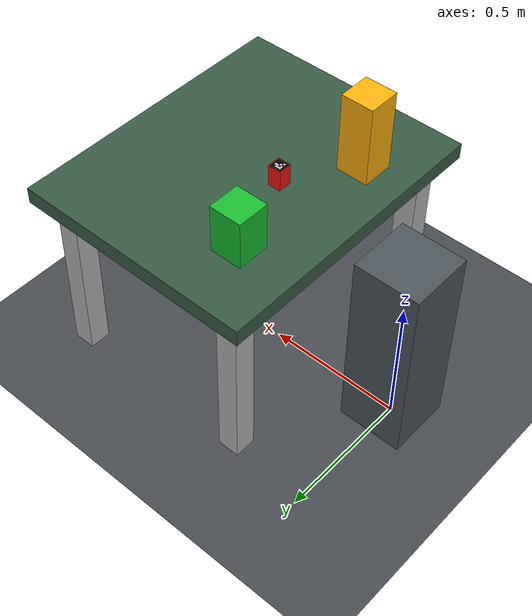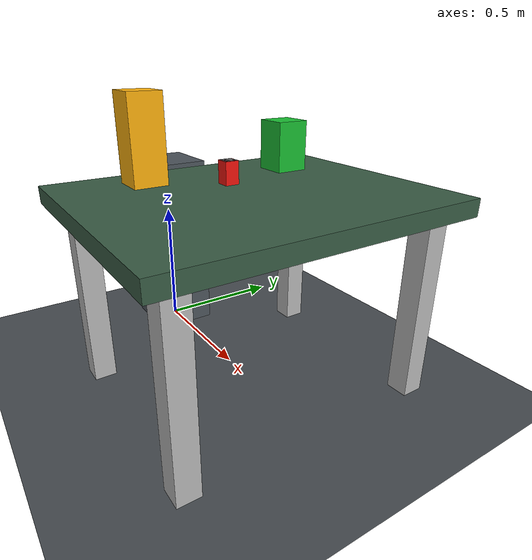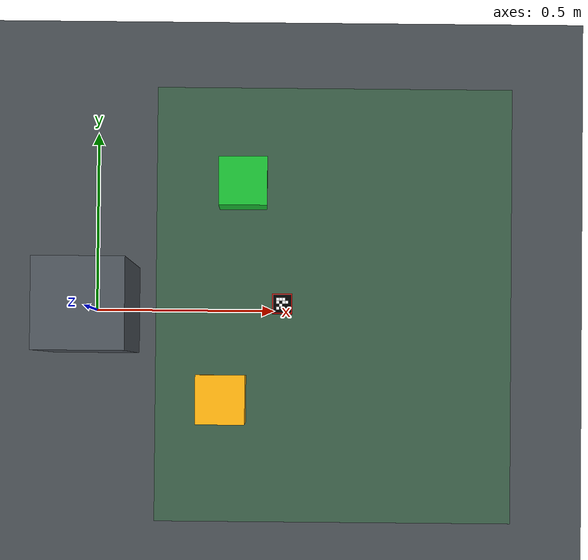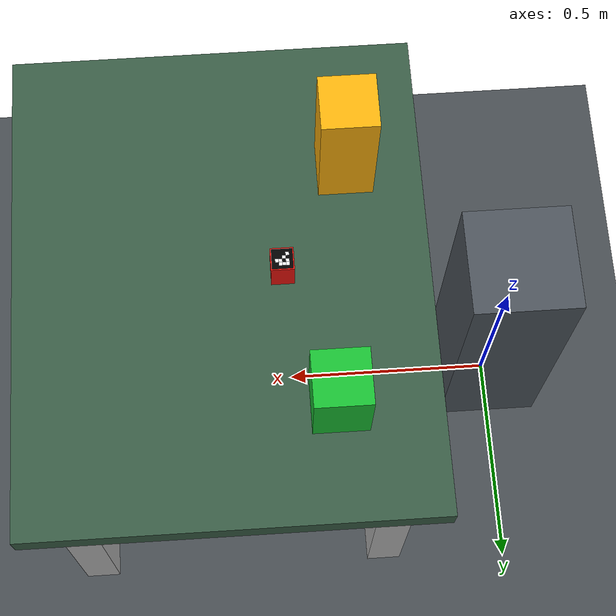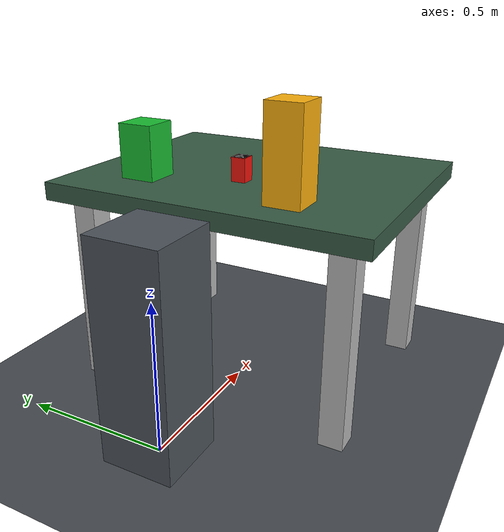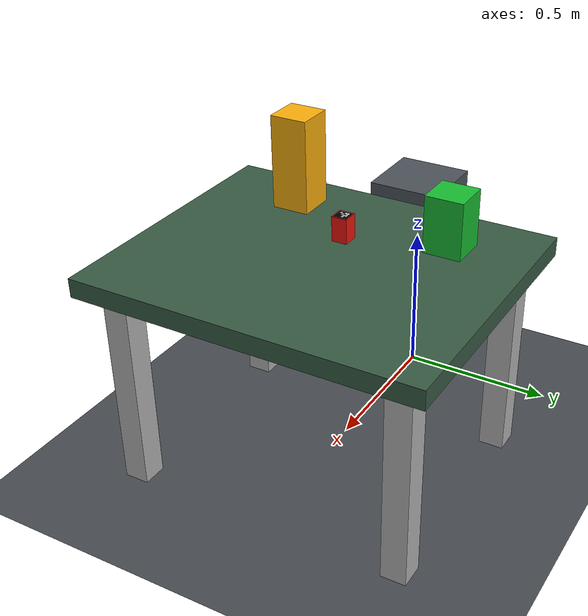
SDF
<?xml version="1.0"?>
<sdf version="1.9">
  <world name="panda_table">
    <physics name="default_physics" type="ignored">
      <max_step_size>0.001</max_step_size>
      <real_time_factor>1.0</real_time_factor>
    </physics>

    <plugin filename="gz-sim-physics-system" name="gz::sim::systems::Physics"/>
    <plugin filename="gz-sim-contact-system" name="gz::sim::systems::Contact"/>
    <plugin filename="gz-sim-apply-link-wrench-system"
            name="gz::sim::systems::ApplyLinkWrench"/>
    <plugin filename="gz-sim-user-commands-system" name="gz::sim::systems::UserCommands"/>
    <plugin filename="gz-sim-scene-broadcaster-system" name="gz::sim::systems::SceneBroadcaster"/>
    <plugin filename="gz-sim-sensors-system"
            name="gz::sim::systems::Sensors">
      <render_engine>ogre2</render_engine>
    </plugin>

    <gravity>0 0 -9.81</gravity>
    <scene>
      <ambient>0.6 0.6 0.6 1</ambient>
      <background>0.12 0.14 0.16 1</background>
      <shadows>true</shadows>
    </scene>

    <light name="sun" type="directional">
      <cast_shadows>true</cast_shadows>
      <pose>0 0 8 0 0 0</pose>
      <diffuse>0.9 0.9 0.9 1</diffuse>
      <specular>0.2 0.2 0.2 1</specular>
      <direction>-0.4 0.2 -1</direction>
    </light>

    <model name="overhead_camera">
      <static>true</static>
      <pose>0.65 0 1.65 0 1.57079632679 0</pose>
      <link name="camera_link">
        <sensor name="rgb_camera" type="camera">
          <always_on>true</always_on>
          <update_rate>15</update_rate>
          <visualize>true</visualize>
          <topic>/camera/image_raw</topic>
          <gz_frame_id>overhead_camera_optical_frame</gz_frame_id>
          <camera>
            <camera_info_topic>/camera/camera_info</camera_info_topic>
            <horizontal_fov>0.65</horizontal_fov>
            <image>
              <width>640</width>
              <height>480</height>
              <format>R8G8B8</format>
            </image>
            <clip>
              <near>0.05</near>
              <far>3.0</far>
            </clip>
          </camera>
        </sensor>
        <sensor name="depth_camera" type="rgbd_camera">
          <always_on>true</always_on>
          <update_rate>10</update_rate>
          <visualize>false</visualize>
          <topic>/depth_camera</topic>
          <gz_frame_id>overhead_depth_camera_frame</gz_frame_id>
          <camera>
            <horizontal_fov>1.2</horizontal_fov>
            <image>
              <width>160</width>
              <height>120</height>
              <format>R8G8B8</format>
            </image>
            <clip>
              <near>0.05</near>
              <far>3.0</far>
            </clip>
            <depth_camera>
              <clip>
                <near>0.05</near>
                <far>3.0</far>
              </clip>
            </depth_camera>
          </camera>
        </sensor>
      </link>
    </model>

    <!-- Inactive unless explicitly bridged by the portfolio video script. -->
    <model name="showcase_camera">
      <static>true</static>
      <pose>1.80 1.25 1.25 0 0.22 -2.40</pose>
      <link name="showcase_camera_link">
        <sensor name="showcase_rgb_camera" type="camera">
          <always_on>false</always_on>
          <update_rate>15</update_rate>
          <visualize>false</visualize>
          <topic>/showcase_camera/image_raw</topic>
          <gz_frame_id>showcase_camera_optical_frame</gz_frame_id>
          <camera>
            <horizontal_fov>1.10</horizontal_fov>
            <image>
              <width>640</width>
              <height>360</height>
              <format>R8G8B8</format>
            </image>
            <clip>
              <near>0.10</near>
              <far>5.0</far>
            </clip>
          </camera>
        </sensor>
      </link>
    </model>

    <model name="ground_plane">
      <static>true</static>
      <link name="link">
        <collision name="collision">
          <geometry><plane><normal>0 0 1</normal><size>20 20</size></plane></geometry>
        </collision>
        <visual name="visual">
          <geometry><plane><normal>0 0 1</normal><size>20 20</size></plane></geometry>
          <material><ambient>0.22 0.24 0.26 1</ambient><diffuse>0.28 0.30 0.32 1</diffuse></material>
        </visual>
      </link>
    </model>

    <model name="robot_pedestal">
      <static>true</static>
      <pose>0 0 0.36 0 0 0</pose>
      <link name="pedestal_link">
        <collision name="collision">
          <geometry><box><size>0.24 0.24 0.72</size></box></geometry>
        </collision>
        <visual name="visual">
          <geometry><box><size>0.24 0.24 0.72</size></box></geometry>
          <material><ambient>0.20 0.22 0.24 1</ambient><diffuse>0.30 0.33 0.36 1</diffuse></material>
        </visual>
      </link>
    </model>

    <model name="work_table">
      <static>true</static>
      <link name="table_top">
        <pose>0.65 0 0.69 0 0 0</pose>
        <collision name="collision">
          <geometry><box><size>0.9 1.1 0.06</size></box></geometry>
        </collision>
        <visual name="visual">
          <geometry><box><size>0.9 1.1 0.06</size></box></geometry>
          <material><ambient>0.18 0.25 0.20 1</ambient><diffuse>0.22 0.36 0.27 1</diffuse></material>
        </visual>
      </link>
      <link name="front_left_leg">
        <pose>0.30 0.45 0.33 0 0 0</pose>
        <collision name="collision"><geometry><box><size>0.08 0.08 0.66</size></box></geometry></collision>
        <visual name="visual"><geometry><box><size>0.08 0.08 0.66</size></box></geometry></visual>
      </link>
      <link name="front_right_leg">
        <pose>0.30 -0.45 0.33 0 0 0</pose>
        <collision name="collision"><geometry><box><size>0.08 0.08 0.66</size></box></geometry></collision>
        <visual name="visual"><geometry><box><size>0.08 0.08 0.66</size></box></geometry></visual>
      </link>
      <link name="rear_left_leg">
        <pose>1.00 0.45 0.33 0 0 0</pose>
        <collision name="collision"><geometry><box><size>0.08 0.08 0.66</size></box></geometry></collision>
        <visual name="visual"><geometry><box><size>0.08 0.08 0.66</size></box></geometry></visual>
      </link>
      <link name="rear_right_leg">
        <pose>1.00 -0.45 0.33 0 0 0</pose>
        <collision name="collision"><geometry><box><size>0.08 0.08 0.66</size></box></geometry></collision>
        <visual name="visual"><geometry><box><size>0.08 0.08 0.66</size></box></geometry></visual>
      </link>
    </model>

    <model name="target_cube">
      <pose>0.52 0 0.76 0 0 0</pose>
      <plugin filename="gz-sim-pose-publisher-system"
              name="gz::sim::systems::PosePublisher">
        <publish_link_pose>false</publish_link_pose>
        <publish_model_pose>true</publish_model_pose>
        <publish_nested_model_pose>false</publish_nested_model_pose>
        <use_pose_vector_msg>false</use_pose_vector_msg>
        <static_publisher>false</static_publisher>
        <update_frequency>30</update_frequency>
      </plugin>
      <link name="target_link">
        <inertial>
          <mass>0.10</mass>
          <inertia><ixx>0.00005</ixx><iyy>0.00005</iyy><izz>0.00004</izz></inertia>
        </inertial>
        <collision name="collision">
          <geometry><box><size>0.05 0.05 0.08</size></box></geometry>
          <surface><friction><ode><mu>2.0</mu><mu2>2.0</mu2></ode></friction></surface>
        </collision>
        <sensor name="target_cube_contact" type="contact">
          <always_on>true</always_on>
          <update_rate>100</update_rate>
          <topic>/gazebo/target_cube/contacts</topic>
          <contact><collision>collision</collision></contact>
        </sensor>
        <visual name="visual">
          <geometry><box><size>0.05 0.05 0.08</size></box></geometry>
          <material><ambient>0.8 0.04 0.03 1</ambient><diffuse>0.95 0.08 0.05 1</diffuse></material>
        </visual>
        <!-- DICT_4X4_50 marker 0. The black plate provides the one-bit border;
             white cells encode bytes {181, 50} in row-major order. -->
        <visual name="aruco_black_plate">
          <pose>0 0 0.0403 0 0 0</pose>
          <cast_shadows>false</cast_shadows>
          <geometry><box><size>0.045 0.045 0.0005</size></box></geometry>
          <material><ambient>0 0 0 1</ambient><diffuse>0 0 0 1</diffuse></material>
        </visual>
        <visual name="aruco_white_r0_c0">
          <pose>-0.01125 -0.01125 0.0406 0 0 0</pose>
          <cast_shadows>false</cast_shadows>
          <geometry><box><size>0.0075 0.0075 0.0004</size></box></geometry>
          <material><ambient>1 1 1 1</ambient><diffuse>1 1 1 1</diffuse></material>
        </visual>
        <visual name="aruco_white_r0_c2">
          <pose>-0.01125 0.00375 0.0406 0 0 0</pose>
          <cast_shadows>false</cast_shadows>
          <geometry><box><size>0.0075 0.0075 0.0004</size></box></geometry>
          <material><ambient>1 1 1 1</ambient><diffuse>1 1 1 1</diffuse></material>
        </visual>
        <visual name="aruco_white_r0_c3">
          <pose>-0.01125 0.01125 0.0406 0 0 0</pose>
          <cast_shadows>false</cast_shadows>
          <geometry><box><size>0.0075 0.0075 0.0004</size></box></geometry>
          <material><ambient>1 1 1 1</ambient><diffuse>1 1 1 1</diffuse></material>
        </visual>
        <visual name="aruco_white_r1_c1">
          <pose>-0.00375 -0.00375 0.0406 0 0 0</pose>
          <cast_shadows>false</cast_shadows>
          <geometry><box><size>0.0075 0.0075 0.0004</size></box></geometry>
          <material><ambient>1 1 1 1</ambient><diffuse>1 1 1 1</diffuse></material>
        </visual>
        <visual name="aruco_white_r1_c3">
          <pose>-0.00375 0.01125 0.0406 0 0 0</pose>
          <cast_shadows>false</cast_shadows>
          <geometry><box><size>0.0075 0.0075 0.0004</size></box></geometry>
          <material><ambient>1 1 1 1</ambient><diffuse>1 1 1 1</diffuse></material>
        </visual>
        <visual name="aruco_white_r2_c2">
          <pose>0.00375 0.00375 0.0406 0 0 0</pose>
          <cast_shadows>false</cast_shadows>
          <geometry><box><size>0.0075 0.0075 0.0004</size></box></geometry>
          <material><ambient>1 1 1 1</ambient><diffuse>1 1 1 1</diffuse></material>
        </visual>
        <visual name="aruco_white_r2_c3">
          <pose>0.00375 0.01125 0.0406 0 0 0</pose>
          <cast_shadows>false</cast_shadows>
          <geometry><box><size>0.0075 0.0075 0.0004</size></box></geometry>
          <material><ambient>1 1 1 1</ambient><diffuse>1 1 1 1</diffuse></material>
        </visual>
        <visual name="aruco_white_r3_c2">
          <pose>0.01125 0.00375 0.0406 0 0 0</pose>
          <cast_shadows>false</cast_shadows>
          <geometry><box><size>0.0075 0.0075 0.0004</size></box></geometry>
          <material><ambient>1 1 1 1</ambient><diffuse>1 1 1 1</diffuse></material>
        </visual>
      </link>
    </model>

    <model name="obstacle_block">
      <static>true</static>
      <pose>0.42 0.30 0.81 0 0 0</pose>
      <link name="obstacle_link">
        <collision name="collision"><geometry><box><size>0.12 0.12 0.18</size></box></geometry></collision>
        <visual name="visual">
          <geometry><box><size>0.12 0.12 0.18</size></box></geometry>
          <material><ambient>0.08 0.55 0.16 1</ambient><diffuse>0.10 0.75 0.20 1</diffuse></material>
        </visual>
      </link>
    </model>

    <model name="dynamic_obstacle">
      <static>true</static>
      <pose>0.37 -0.24 0.87 0 0 0</pose>
      <plugin filename="gz-sim-pose-publisher-system"
              name="gz::sim::systems::PosePublisher">
        <publish_link_pose>false</publish_link_pose>
        <publish_model_pose>true</publish_model_pose>
        <publish_nested_model_pose>false</publish_nested_model_pose>
        <use_pose_vector_msg>false</use_pose_vector_msg>
        <static_publisher>false</static_publisher>
        <update_frequency>20</update_frequency>
      </plugin>
      <link name="dynamic_obstacle_link">
        <collision name="collision">
          <geometry><box><size>0.12 0.12 0.30</size></box></geometry>
        </collision>
        <visual name="visual">
          <geometry><box><size>0.12 0.12 0.30</size></box></geometry>
          <material>
            <ambient>0.85 0.55 0.03 1</ambient>
            <diffuse>1.0 0.70 0.05 1</diffuse>
          </material>
        </visual>
      </link>
    </model>
  </world>
</sdf>
